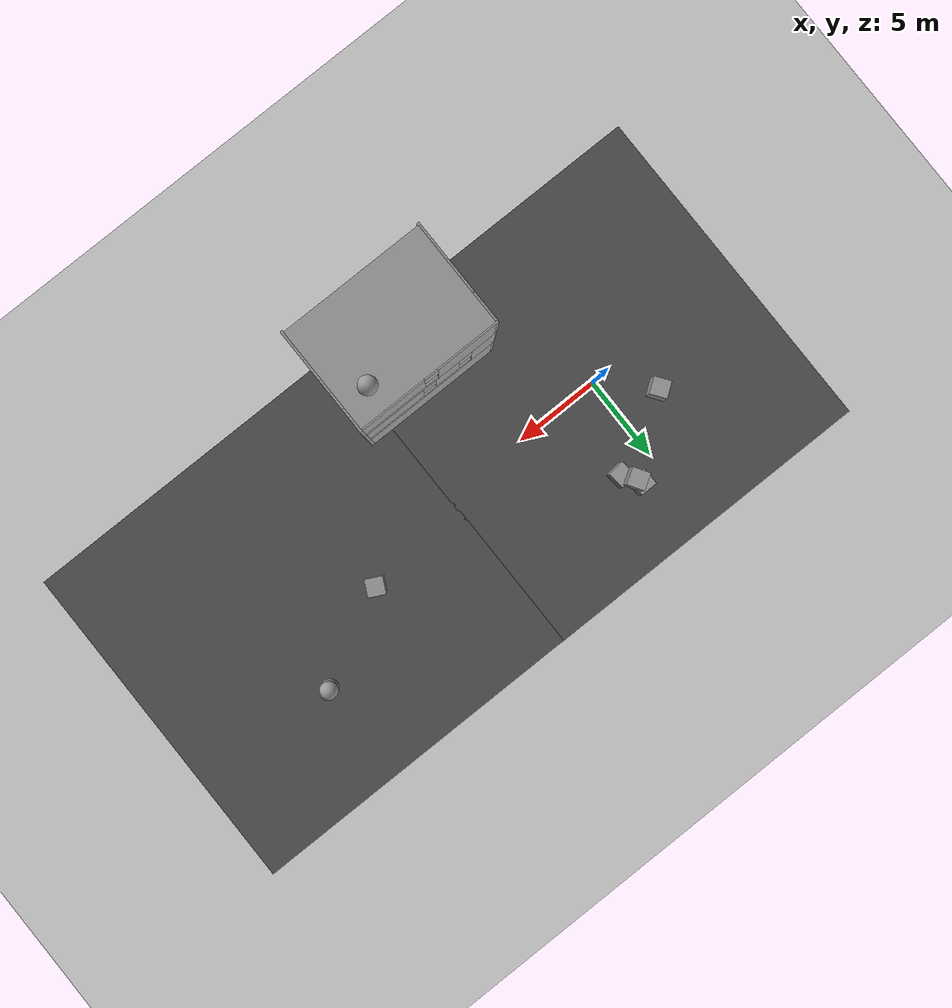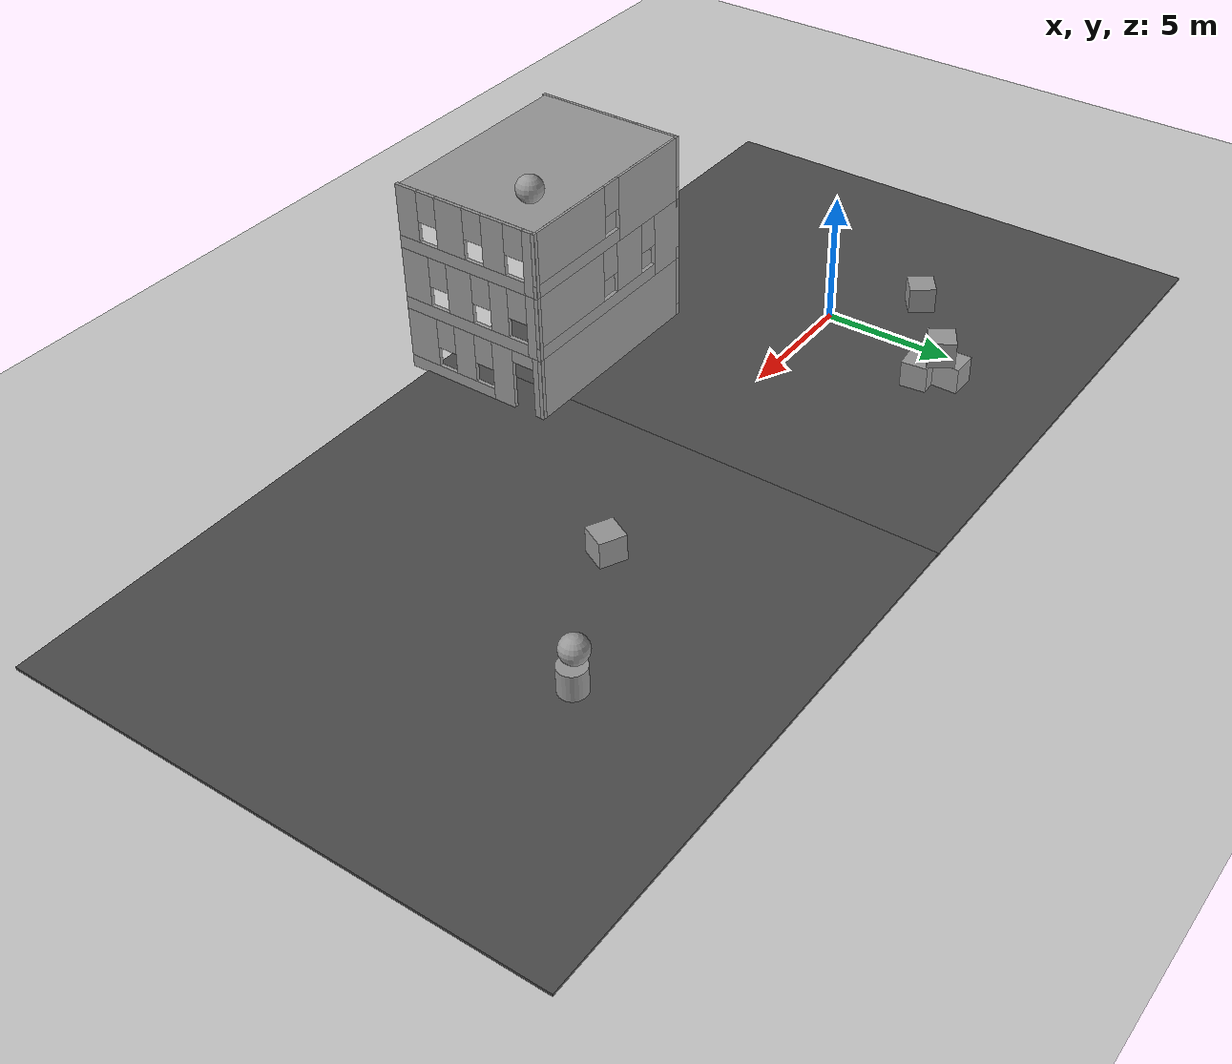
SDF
<sdf version="1.7">
 <world name="default">
  <model name="ground_plane">
   <static>1</static>
   <link name="link">
    <collision name="collision">
     <geometry><plane><normal>0 0 1</normal><size>100 100</size></plane></geometry>
     <surface><friction><ode><mu>100</mu><mu2>50</mu2></ode></friction></surface>
    </collision>
    <visual name="visual">
     <cast_shadows>0</cast_shadows>
     <geometry><plane><normal>0 0 1</normal><size>100 100</size></plane></geometry>
     <material>
      <script><uri>file://media/materials/scripts/gazebo.material</uri><name>Gazebo/Grey</name></script>
     </material>
    </visual>
   </link>
  </model>
  <model name="asphalt_plane">
   <static>1</static>
   <link name="link">
    <collision name="collision"><geometry><box><size>20 20 0.1</size></box></geometry></collision>
    <visual name="visual">
     <cast_shadows>0</cast_shadows>
     <geometry><box><size>20 20 0.1</size></box></geometry>
     <material>
      <script>
       <uri>model://asphalt_plane/materials/scripts</uri>
       <uri>model://asphalt_plane/materials/textures</uri>
       <name>vrc/asphalt</name>
      </script>
     </material>
    </visual>
   </link>
   <pose>0.058806 -0.094526 0 0 -0 0</pose>
  </model>
  <model name="asphalt_plane_0">
   <static>1</static>
   <link name="link">
    <collision name="collision"><geometry><box><size>20 20 0.1</size></box></geometry></collision>
    <visual name="visual">
     <cast_shadows>0</cast_shadows>
     <geometry><box><size>20 20 0.1</size></box></geometry>
     <material>
      <script>
       <uri>model://asphalt_plane/materials/scripts</uri>
       <uri>model://asphalt_plane/materials/textures</uri>
       <name>vrc/asphalt</name>
      </script>
     </material>
    </visual>
   </link>
   <pose>19.9513 -0.10756 0 0 -0 0</pose>
  </model>
  <model name="simple_building">
   <pose>7.31035 -7.81796 0 0 -0 0</pose>
   <link name="Wall_1">
    <pose>-4.06892 0.011464 0 0 -0 1.5708</pose>
    <visual name="Wall_1_Visual_0">
     <pose>-2.34908 0 1.25 0 -0 0</pose>
     <geometry><box><size>1.30184 0.15 2.5</size></box></geometry>
     <material>
      <script><uri>file://media/materials/scripts/gazebo.material</uri><name>Gazebo/Grey</name></script>
      <ambient>1 1 1 1</ambient>
     </material>
    </visual>
    <collision name="Wall_1_Collision_0">
     <geometry><box><size>1.30184 0.15 2.5</size></box></geometry>
     <pose>-2.34908 0 1.25 0 -0 0</pose>
    </collision>
    <visual name="Wall_1_Visual_1">
     <pose>0.650921 0 0.25 0 -0 0</pose>
     <geometry><box><size>4.69816 0.15 0.5</size></box></geometry>
     <material>
      <script><uri>file://media/materials/scripts/gazebo.material</uri><name>Gazebo/Grey</name></script>
      <ambient>1 1 1 1</ambient>
     </material>
    </visual>
    <collision name="Wall_1_Collision_1">
     <geometry><box><size>4.69816 0.15 0.5</size></box></geometry>
     <pose>0.650921 0 0.25 0 -0 0</pose>
    </collision>
    <visual name="Wall_1_Visual_2">
     <pose>-0.309589 0 1.5 0 -0 0</pose>
     <geometry><box><size>1.17714 0.15 2</size></box></geometry>
     <material>
      <script><uri>file://media/materials/scripts/gazebo.material</uri><name>Gazebo/Grey</name></script>
      <ambient>1 1 1 1</ambient>
     </material>
    </visual>
    <collision name="Wall_1_Collision_2">
     <geometry><box><size>1.17714 0.15 2</size></box></geometry>
     <pose>-0.309589 0 1.5 0 -0 0</pose>
    </collision>
    <visual name="Wall_1_Visual_3">
     <pose>2.03949 0 1.5 0 -0 0</pose>
     <geometry><box><size>1.92102 0.15 2</size></box></geometry>
     <material>
      <script><uri>file://media/materials/scripts/gazebo.material</uri><name>Gazebo/Grey</name></script>
      <ambient>1 1 1 1</ambient>
     </material>
    </visual>
    <collision name="Wall_1_Collision_3">
     <geometry><box><size>1.92102 0.15 2</size></box></geometry>
     <pose>2.03949 0 1.5 0 -0 0</pose>
    </collision>
    <visual name="Wall_1_Visual_4">
     <pose>-1.29816 0 1.9 0 -0 0</pose>
     <geometry><box><size>0.8 0.15 1.2</size></box></geometry>
     <material>
      <script><uri>file://media/materials/scripts/gazebo.material</uri><name>Gazebo/Grey</name></script>
      <ambient>1 1 1 1</ambient>
     </material>
    </visual>
    <collision name="Wall_1_Collision_4">
     <geometry><box><size>0.8 0.15 1.2</size></box></geometry>
     <pose>-1.29816 0 1.9 0 -0 0</pose>
    </collision>
    <visual name="Wall_1_Visual_5">
     <pose>0.678979 0 1.9 0 -0 0</pose>
     <geometry><box><size>0.8 0.15 1.2</size></box></geometry>
     <material>
      <script><uri>file://media/materials/scripts/gazebo.material</uri><name>Gazebo/Grey</name></script>
      <ambient>1 1 1 1</ambient>
     </material>
    </visual>
    <collision name="Wall_1_Collision_5">
     <geometry><box><size>0.8 0.15 1.2</size></box></geometry>
     <pose>0.678979 0 1.9 0 -0 0</pose>
    </collision>
   </link>
   <link name="Wall_10">
    <pose>-1.60572 1.23127 0 0 -0 3.14159</pose>
    <visual name="Wall_10_Visual_0">
     <pose>-0.661074 0 1.25 0 -0 0</pose>
     <geometry><box><size>3.67785 0.15 2.5</size></box></geometry>
     <material>
      <script><uri>file://media/materials/scripts/gazebo.material</uri><name>Gazebo/Grey</name></script>
      <ambient>1 1 1 1</ambient>
     </material>
    </visual>
    <collision name="Wall_10_Collision_0">
     <geometry><box><size>3.67785 0.15 2.5</size></box></geometry>
     <pose>-0.661074 0 1.25 0 -0 0</pose>
    </collision>
    <visual name="Wall_10_Visual_1">
     <pose>2.28893 0 1.25 0 -0 0</pose>
     <geometry><box><size>0.422147 0.15 2.5</size></box></geometry>
     <material>
      <script><uri>file://media/materials/scripts/gazebo.material</uri><name>Gazebo/Grey</name></script>
      <ambient>1 1 1 1</ambient>
     </material>
    </visual>
    <collision name="Wall_10_Collision_1">
     <geometry><box><size>0.422147 0.15 2.5</size></box></geometry>
     <pose>2.28893 0 1.25 0 -0 0</pose>
    </collision>
    <visual name="Wall_10_Visual_2">
     <pose>1.62785 0 2.25 0 -0 0</pose>
     <geometry><box><size>0.9 0.15 0.5</size></box></geometry>
     <material>
      <script><uri>file://media/materials/scripts/gazebo.material</uri><name>Gazebo/Grey</name></script>
      <ambient>1 1 1 1</ambient>
     </material>
    </visual>
    <collision name="Wall_10_Collision_2">
     <geometry><box><size>0.9 0.15 0.5</size></box></geometry>
     <pose>1.62785 0 2.25 0 -0 0</pose>
    </collision>
   </link>
   <link name="Wall_17">
    <pose>-4.06892 0.011464 2.5 0 -0 1.5708</pose>
    <visual name="Wall_17_Visual_0">
     <pose>-2.35668 0 1.25 0 -0 0</pose>
     <geometry><box><size>1.28663 0.15 2.5</size></box></geometry>
     <material>
      <script><uri>file://media/materials/scripts/gazebo.material</uri><name>Gazebo/Grey</name></script>
      <ambient>1 1 1 1</ambient>
     </material>
    </visual>
    <collision name="Wall_17_Collision_0">
     <geometry><box><size>1.28663 0.15 2.5</size></box></geometry>
     <pose>-2.35668 0 1.25 0 -0 0</pose>
    </collision>
    <visual name="Wall_17_Visual_1">
     <pose>0.643317 0 0.25 0 -0 0</pose>
     <geometry><box><size>4.71337 0.15 0.5</size></box></geometry>
     <material>
      <script><uri>file://media/materials/scripts/gazebo.material</uri><name>Gazebo/Grey</name></script>
      <ambient>1 1 1 1</ambient>
     </material>
    </visual>
    <collision name="Wall_17_Collision_1">
     <geometry><box><size>4.71337 0.15 0.5</size></box></geometry>
     <pose>0.643317 0 0.25 0 -0 0</pose>
    </collision>
    <visual name="Wall_17_Visual_2">
     <pose>-0.309589 0 1.5 0 -0 0</pose>
     <geometry><box><size>1.20755 0.15 2</size></box></geometry>
     <material>
      <script><uri>file://media/materials/scripts/gazebo.material</uri><name>Gazebo/Grey</name></script>
      <ambient>1 1 1 1</ambient>
     </material>
    </visual>
    <collision name="Wall_17_Collision_2">
     <geometry><box><size>1.20755 0.15 2</size></box></geometry>
     <pose>-0.309589 0 1.5 0 -0 0</pose>
    </collision>
    <visual name="Wall_17_Visual_3">
     <pose>2.04709 0 1.5 0 -0 0</pose>
     <geometry><box><size>1.90581 0.15 2</size></box></geometry>
     <material>
      <script><uri>file://media/materials/scripts/gazebo.material</uri><name>Gazebo/Grey</name></script>
      <ambient>1 1 1 1</ambient>
     </material>
    </visual>
    <collision name="Wall_17_Collision_3">
     <geometry><box><size>1.90581 0.15 2</size></box></geometry>
     <pose>2.04709 0 1.5 0 -0 0</pose>
    </collision>
    <visual name="Wall_17_Visual_4">
     <pose>-1.31337 0 1.9 0 -0 0</pose>
     <geometry><box><size>0.8 0.15 1.2</size></box></geometry>
     <material>
      <script><uri>file://media/materials/scripts/gazebo.material</uri><name>Gazebo/Grey</name></script>
      <ambient>1 1 1 1</ambient>
     </material>
    </visual>
    <collision name="Wall_17_Collision_4">
     <geometry><box><size>0.8 0.15 1.2</size></box></geometry>
     <pose>-1.31337 0 1.9 0 -0 0</pose>
    </collision>
    <visual name="Wall_17_Visual_5">
     <pose>0.694188 0 1.9 0 -0 0</pose>
     <geometry><box><size>0.8 0.15 1.2</size></box></geometry>
     <material>
      <script><uri>file://media/materials/scripts/gazebo.material</uri><name>Gazebo/Grey</name></script>
      <ambient>1 1 1 1</ambient>
     </material>
    </visual>
    <collision name="Wall_17_Collision_5">
     <geometry><box><size>0.8 0.15 1.2</size></box></geometry>
     <pose>0.694188 0 1.9 0 -0 0</pose>
    </collision>
   </link>
   <link name="Wall_18">
    <pose>0.008172 2.93646 2.5 0 -0 0</pose>
    <visual name="Wall_18_Visual_0">
     <pose>-3.37982 0 1.25 0 -0 0</pose>
     <geometry><box><size>1.51412 0.15 2.5</size></box></geometry>
     <material>
      <script><uri>file://media/materials/scripts/gazebo.material</uri><name>Gazebo/Grey</name></script>
      <ambient>1 1 1 1</ambient>
     </material>
    </visual>
    <collision name="Wall_18_Collision_0">
     <geometry><box><size>1.51412 0.15 2.5</size></box></geometry>
     <pose>-3.37982 0 1.25 0 -0 0</pose>
    </collision>
    <visual name="Wall_18_Visual_1">
     <pose>0.757062 0 0.25 0 -0 0</pose>
     <geometry><box><size>6.75963 0.15 0.5</size></box></geometry>
     <material>
      <script><uri>file://media/materials/scripts/gazebo.material</uri><name>Gazebo/Grey</name></script>
      <ambient>1 1 1 1</ambient>
     </material>
    </visual>
    <collision name="Wall_18_Collision_1">
     <geometry><box><size>6.75963 0.15 0.5</size></box></geometry>
     <pose>0.757062 0 0.25 0 -0 0</pose>
    </collision>
    <visual name="Wall_18_Visual_2">
     <pose>-1.0897 0 1.5 0 -0 0</pose>
     <geometry><box><size>1.4661 0.15 2</size></box></geometry>
     <material>
      <script><uri>file://media/materials/scripts/gazebo.material</uri><name>Gazebo/Grey</name></script>
      <ambient>1 1 1 1</ambient>
     </material>
    </visual>
    <collision name="Wall_18_Collision_2">
     <geometry><box><size>1.4661 0.15 2</size></box></geometry>
     <pose>-1.0897 0 1.5 0 -0 0</pose>
    </collision>
    <visual name="Wall_18_Visual_3">
     <pose>2.29011 0 1.5 0 -0 0</pose>
     <geometry><box><size>3.69353 0.15 2</size></box></geometry>
     <material>
      <script><uri>file://media/materials/scripts/gazebo.material</uri><name>Gazebo/Grey</name></script>
      <ambient>1 1 1 1</ambient>
     </material>
    </visual>
    <collision name="Wall_18_Collision_3">
     <geometry><box><size>3.69353 0.15 2</size></box></geometry>
     <pose>2.29011 0 1.5 0 -0 0</pose>
    </collision>
    <visual name="Wall_18_Visual_4">
     <pose>-2.22275 0 1.9 0 -0 0</pose>
     <geometry><box><size>0.8 0.15 1.2</size></box></geometry>
     <material>
      <script><uri>file://media/materials/scripts/gazebo.material</uri><name>Gazebo/Grey</name></script>
      <ambient>1 1 1 1</ambient>
     </material>
    </visual>
    <collision name="Wall_18_Collision_4">
     <geometry><box><size>0.8 0.15 1.2</size></box></geometry>
     <pose>-2.22275 0 1.9 0 -0 0</pose>
    </collision>
    <visual name="Wall_18_Visual_5">
     <pose>0.043349 0 1.9 0 -0 0</pose>
     <geometry><box><size>0.8 0.15 1.2</size></box></geometry>
     <material>
      <script><uri>file://media/materials/scripts/gazebo.material</uri><name>Gazebo/Grey</name></script>
      <ambient>1 1 1 1</ambient>
     </material>
    </visual>
    <collision name="Wall_18_Collision_5">
     <geometry><box><size>0.8 0.15 1.2</size></box></geometry>
     <pose>0.043349 0 1.9 0 -0 0</pose>
    </collision>
   </link>
   <link name="Wall_19">
    <pose>4.05484 0.011464 2.5 0 0 -1.5708</pose>
    <visual name="Wall_19_Visual_0">
     <pose>-2.73149 0 1.25 0 -0 0</pose>
     <geometry><box><size>0.537024 0.15 2.5</size></box></geometry>
     <material>
      <script><uri>file://media/materials/scripts/gazebo.material</uri><name>Gazebo/Grey</name></script>
      <ambient>1 1 1 1</ambient>
     </material>
    </visual>
    <collision name="Wall_19_Collision_0">
     <geometry><box><size>0.537024 0.15 2.5</size></box></geometry>
     <pose>-2.73149 0 1.25 0 -0 0</pose>
    </collision>
    <visual name="Wall_19_Visual_1">
     <pose>0.268512 0 0.25 0 -0 0</pose>
     <geometry><box><size>5.46298 0.15 0.5</size></box></geometry>
     <material>
      <script><uri>file://media/materials/scripts/gazebo.material</uri><name>Gazebo/Grey</name></script>
      <ambient>1 1 1 1</ambient>
     </material>
    </visual>
    <collision name="Wall_19_Collision_1">
     <geometry><box><size>5.46298 0.15 0.5</size></box></geometry>
     <pose>0.268512 0 0.25 0 -0 0</pose>
    </collision>
    <visual name="Wall_19_Visual_2">
     <pose>-1.27212 0 1.5 0 -0 0</pose>
     <geometry><box><size>0.78171 0.15 2</size></box></geometry>
     <material>
      <script><uri>file://media/materials/scripts/gazebo.material</uri><name>Gazebo/Grey</name></script>
      <ambient>1 1 1 1</ambient>
     </material>
    </visual>
    <collision name="Wall_19_Collision_2">
     <geometry><box><size>0.78171 0.15 2</size></box></geometry>
     <pose>-1.27212 0 1.5 0 -0 0</pose>
    </collision>
    <visual name="Wall_19_Visual_3">
     <pose>0.469281 0 1.5 0 -0 0</pose>
     <geometry><box><size>1.10109 0.15 2</size></box></geometry>
     <material>
      <script><uri>file://media/materials/scripts/gazebo.material</uri><name>Gazebo/Grey</name></script>
      <ambient>1 1 1 1</ambient>
     </material>
    </visual>
    <collision name="Wall_19_Collision_3">
     <geometry><box><size>1.10109 0.15 2</size></box></geometry>
     <pose>0.469281 0 1.5 0 -0 0</pose>
    </collision>
    <visual name="Wall_19_Visual_4">
     <pose>2.40991 0 1.5 0 -0 0</pose>
     <geometry><box><size>1.18017 0.15 2</size></box></geometry>
     <material>
      <script><uri>file://media/materials/scripts/gazebo.material</uri><name>Gazebo/Grey</name></script>
      <ambient>1 1 1 1</ambient>
     </material>
    </visual>
    <collision name="Wall_19_Collision_4">
     <geometry><box><size>1.18017 0.15 2</size></box></geometry>
     <pose>2.40991 0 1.5 0 -0 0</pose>
    </collision>
    <visual name="Wall_19_Visual_5">
     <pose>-2.06298 0 1.9 0 -0 0</pose>
     <geometry><box><size>0.8 0.15 1.2</size></box></geometry>
     <material>
      <script><uri>file://media/materials/scripts/gazebo.material</uri><name>Gazebo/Grey</name></script>
      <ambient>1 1 1 1</ambient>
     </material>
    </visual>
    <collision name="Wall_19_Collision_5">
     <geometry><box><size>0.8 0.15 1.2</size></box></geometry>
     <pose>-2.06298 0 1.9 0 -0 0</pose>
    </collision>
    <visual name="Wall_19_Visual_6">
     <pose>-0.481266 0 1.9 0 -0 0</pose>
     <geometry><box><size>0.8 0.15 1.2</size></box></geometry>
     <material>
      <script><uri>file://media/materials/scripts/gazebo.material</uri><name>Gazebo/Grey</name></script>
      <ambient>1 1 1 1</ambient>
     </material>
    </visual>
    <collision name="Wall_19_Collision_6">
     <geometry><box><size>0.8 0.15 1.2</size></box></geometry>
     <pose>-0.481266 0 1.9 0 -0 0</pose>
    </collision>
    <visual name="Wall_19_Visual_7">
     <pose>1.41983 0 1.9 0 -0 0</pose>
     <geometry><box><size>0.8 0.15 1.2</size></box></geometry>
     <material>
      <script><uri>file://media/materials/scripts/gazebo.material</uri><name>Gazebo/Grey</name></script>
      <ambient>1 1 1 1</ambient>
     </material>
    </visual>
    <collision name="Wall_19_Collision_7">
     <geometry><box><size>0.8 0.15 1.2</size></box></geometry>
     <pose>1.41983 0 1.9 0 -0 0</pose>
    </collision>
   </link>
   <link name="Wall_2">
    <collision name="Wall_2_Collision">
     <geometry><box><size>8.27376 0.15 2.5</size></box></geometry>
     <pose>0 0 1.25 0 -0 0</pose>
    </collision>
    <visual name="Wall_2_Visual">
     <pose>0 0 1.25 0 -0 0</pose>
     <geometry><box><size>8.27376 0.15 2.5</size></box></geometry>
     <material>
      <script><uri>file://media/materials/scripts/gazebo.material</uri><name>Gazebo/Grey</name></script>
      <ambient>1 1 1 1</ambient>
     </material>
    </visual>
    <pose>0.008172 2.93646 0 0 -0 0</pose>
   </link>
   <link name="Wall_21">
    <collision name="Wall_21_Collision">
     <geometry><box><size>3.5 0.15 2.5</size></box></geometry>
     <pose>0 0 1.25 0 -0 0</pose>
    </collision>
    <visual name="Wall_21_Visual">
     <pose>0 0 1.25 0 -0 0</pose>
     <geometry><box><size>3.5 0.15 2.5</size></box></geometry>
     <material>
      <script><uri>file://media/materials/scripts/gazebo.material</uri><name>Gazebo/Grey</name></script>
      <ambient>1 1 1 1</ambient>
     </material>
    </visual>
    <pose>-0.855716 1.23127 2.5 0 -0 3.14159</pose>
   </link>
   <link name="Wall_22">
    <pose>-4.06892 0.011464 5 0 -0 1.5708</pose>
    <visual name="Wall_22_Visual_0">
     <pose>-2.31106 0 1.25 0 -0 0</pose>
     <geometry><box><size>1.37789 0.15 2.5</size></box></geometry>
     <material>
      <script><uri>file://media/materials/scripts/gazebo.material</uri><name>Gazebo/Grey</name></script>
      <ambient>1 1 1 1</ambient>
     </material>
    </visual>
    <collision name="Wall_22_Collision_0">
     <geometry><box><size>1.37789 0.15 2.5</size></box></geometry>
     <pose>-2.31106 0 1.25 0 -0 0</pose>
    </collision>
    <visual name="Wall_22_Visual_1">
     <pose>0.688943 0 0.25 0 -0 0</pose>
     <geometry><box><size>4.62211 0.15 0.5</size></box></geometry>
     <material>
      <script><uri>file://media/materials/scripts/gazebo.material</uri><name>Gazebo/Grey</name></script>
      <ambient>1 1 1 1</ambient>
     </material>
    </visual>
    <collision name="Wall_22_Collision_1">
     <geometry><box><size>4.62211 0.15 0.5</size></box></geometry>
     <pose>0.688943 0 0.25 0 -0 0</pose>
    </collision>
    <visual name="Wall_22_Visual_2">
     <pose>-0.271567 0 1.5 0 -0 0</pose>
     <geometry><box><size>1.10109 0.15 2</size></box></geometry>
     <material>
      <script><uri>file://media/materials/scripts/gazebo.material</uri><name>Gazebo/Grey</name></script>
      <ambient>1 1 1 1</ambient>
     </material>
    </visual>
    <collision name="Wall_22_Collision_2">
     <geometry><box><size>1.10109 0.15 2</size></box></geometry>
     <pose>-0.271567 0 1.5 0 -0 0</pose>
    </collision>
    <visual name="Wall_22_Visual_3">
     <pose>2.03949 0 1.5 0 -0 0</pose>
     <geometry><box><size>1.92102 0.15 2</size></box></geometry>
     <material>
      <script><uri>file://media/materials/scripts/gazebo.material</uri><name>Gazebo/Grey</name></script>
      <ambient>1 1 1 1</ambient>
     </material>
    </visual>
    <collision name="Wall_22_Collision_3">
     <geometry><box><size>1.92102 0.15 2</size></box></geometry>
     <pose>2.03949 0 1.5 0 -0 0</pose>
    </collision>
    <visual name="Wall_22_Visual_4">
     <pose>-1.22211 0 1.9 0 -0 0</pose>
     <geometry><box><size>0.8 0.15 1.2</size></box></geometry>
     <material>
      <script><uri>file://media/materials/scripts/gazebo.material</uri><name>Gazebo/Grey</name></script>
      <ambient>1 1 1 1</ambient>
     </material>
    </visual>
    <collision name="Wall_22_Collision_4">
     <geometry><box><size>0.8 0.15 1.2</size></box></geometry>
     <pose>-1.22211 0 1.9 0 -0 0</pose>
    </collision>
    <visual name="Wall_22_Visual_5">
     <pose>0.678979 0 1.9 0 -0 0</pose>
     <geometry><box><size>0.8 0.15 1.2</size></box></geometry>
     <material>
      <script><uri>file://media/materials/scripts/gazebo.material</uri><name>Gazebo/Grey</name></script>
      <ambient>1 1 1 1</ambient>
     </material>
    </visual>
    <collision name="Wall_22_Collision_5">
     <geometry><box><size>0.8 0.15 1.2</size></box></geometry>
     <pose>0.678979 0 1.9 0 -0 0</pose>
    </collision>
   </link>
   <link name="Wall_23">
    <pose>0.008172 2.93646 5 0 -0 0</pose>
    <visual name="Wall_23_Visual_0">
     <pose>-2.33041 0 1.25 0 -0 0</pose>
     <geometry><box><size>3.61293 0.15 2.5</size></box></geometry>
     <material>
      <script><uri>file://media/materials/scripts/gazebo.material</uri><name>Gazebo/Grey</name></script>
      <ambient>1 1 1 1</ambient>
     </material>
    </visual>
    <collision name="Wall_23_Collision_0">
     <geometry><box><size>3.61293 0.15 2.5</size></box></geometry>
     <pose>-2.33041 0 1.25 0 -0 0</pose>
    </collision>
    <visual name="Wall_23_Visual_1">
     <pose>1.80647 0 0.25 0 -0 0</pose>
     <geometry><box><size>4.66083 0.15 0.5</size></box></geometry>
     <material>
      <script><uri>file://media/materials/scripts/gazebo.material</uri><name>Gazebo/Grey</name></script>
      <ambient>1 1 1 1</ambient>
     </material>
    </visual>
    <collision name="Wall_23_Collision_1">
     <geometry><box><size>4.66083 0.15 0.5</size></box></geometry>
     <pose>1.80647 0 0.25 0 -0 0</pose>
    </collision>
    <visual name="Wall_23_Visual_2">
     <pose>2.20647 0 1.5 0 -0 0</pose>
     <geometry><box><size>3.86083 0.15 2</size></box></geometry>
     <material>
      <script><uri>file://media/materials/scripts/gazebo.material</uri><name>Gazebo/Grey</name></script>
      <ambient>1 1 1 1</ambient>
     </material>
    </visual>
    <collision name="Wall_23_Collision_2">
     <geometry><box><size>3.86083 0.15 2</size></box></geometry>
     <pose>2.20647 0 1.5 0 -0 0</pose>
    </collision>
    <visual name="Wall_23_Visual_3">
     <pose>-0.123947 0 1.9 0 -0 0</pose>
     <geometry><box><size>0.8 0.15 1.2</size></box></geometry>
     <material>
      <script><uri>file://media/materials/scripts/gazebo.material</uri><name>Gazebo/Grey</name></script>
      <ambient>1 1 1 1</ambient>
     </material>
    </visual>
    <collision name="Wall_23_Collision_3">
     <geometry><box><size>0.8 0.15 1.2</size></box></geometry>
     <pose>-0.123947 0 1.9 0 -0 0</pose>
    </collision>
   </link>
   <link name="Wall_24">
    <pose>4.05484 0.011464 5 0 0 -1.5708</pose>
    <visual name="Wall_24_Visual_0">
     <pose>-2.73149 0 1.25 0 -0 0</pose>
     <geometry><box><size>0.537024 0.15 2.5</size></box></geometry>
     <material>
      <script><uri>file://media/materials/scripts/gazebo.material</uri><name>Gazebo/Grey</name></script>
      <ambient>1 1 1 1</ambient>
     </material>
    </visual>
    <collision name="Wall_24_Collision_0">
     <geometry><box><size>0.537024 0.15 2.5</size></box></geometry>
     <pose>-2.73149 0 1.25 0 -0 0</pose>
    </collision>
    <visual name="Wall_24_Visual_1">
     <pose>0.268512 0 0.25 0 -0 0</pose>
     <geometry><box><size>5.46298 0.15 0.5</size></box></geometry>
     <material>
      <script><uri>file://media/materials/scripts/gazebo.material</uri><name>Gazebo/Grey</name></script>
      <ambient>1 1 1 1</ambient>
     </material>
    </visual>
    <collision name="Wall_24_Collision_1">
     <geometry><box><size>5.46298 0.15 0.5</size></box></geometry>
     <pose>0.268512 0 0.25 0 -0 0</pose>
    </collision>
    <visual name="Wall_24_Visual_2">
     <pose>-1.18847 0 1.5 0 -0 0</pose>
     <geometry><box><size>0.949006 0.15 2</size></box></geometry>
     <material>
      <script><uri>file://media/materials/scripts/gazebo.material</uri><name>Gazebo/Grey</name></script>
      <ambient>1 1 1 1</ambient>
     </material>
    </visual>
    <collision name="Wall_24_Collision_2">
     <geometry><box><size>0.949006 0.15 2</size></box></geometry>
     <pose>-1.18847 0 1.5 0 -0 0</pose>
    </collision>
    <visual name="Wall_24_Visual_3">
     <pose>0.689808 0 1.5 0 -0 0</pose>
     <geometry><box><size>1.20755 0.15 2</size></box></geometry>
     <material>
      <script><uri>file://media/materials/scripts/gazebo.material</uri><name>Gazebo/Grey</name></script>
      <ambient>1 1 1 1</ambient>
     </material>
    </visual>
    <collision name="Wall_24_Collision_3">
     <geometry><box><size>1.20755 0.15 2</size></box></geometry>
     <pose>0.689808 0 1.5 0 -0 0</pose>
    </collision>
    <visual name="Wall_24_Visual_4">
     <pose>2.54679 0 1.5 0 -0 0</pose>
     <geometry><box><size>0.906414 0.15 2</size></box></geometry>
     <material>
      <script><uri>file://media/materials/scripts/gazebo.material</uri><name>Gazebo/Grey</name></script>
      <ambient>1 1 1 1</ambient>
     </material>
    </visual>
    <collision name="Wall_24_Collision_4">
     <geometry><box><size>0.906414 0.15 2</size></box></geometry>
     <pose>2.54679 0 1.5 0 -0 0</pose>
    </collision>
    <visual name="Wall_24_Visual_5">
     <pose>-2.06298 0 1.9 0 -0 0</pose>
     <geometry><box><size>0.8 0.15 1.2</size></box></geometry>
     <material>
      <script><uri>file://media/materials/scripts/gazebo.material</uri><name>Gazebo/Grey</name></script>
      <ambient>1 1 1 1</ambient>
     </material>
    </visual>
    <collision name="Wall_24_Collision_5">
     <geometry><box><size>0.8 0.15 1.2</size></box></geometry>
     <pose>-2.06298 0 1.9 0 -0 0</pose>
    </collision>
    <visual name="Wall_24_Visual_6">
     <pose>-0.313969 0 1.9 0 -0 0</pose>
     <geometry><box><size>0.8 0.15 1.2</size></box></geometry>
     <material>
      <script><uri>file://media/materials/scripts/gazebo.material</uri><name>Gazebo/Grey</name></script>
      <ambient>1 1 1 1</ambient>
     </material>
    </visual>
    <collision name="Wall_24_Collision_6">
     <geometry><box><size>0.8 0.15 1.2</size></box></geometry>
     <pose>-0.313969 0 1.9 0 -0 0</pose>
    </collision>
    <visual name="Wall_24_Visual_7">
     <pose>1.69359 0 1.9 0 -0 0</pose>
     <geometry><box><size>0.8 0.15 1.2</size></box></geometry>
     <material>
      <script><uri>file://media/materials/scripts/gazebo.material</uri><name>Gazebo/Grey</name></script>
      <ambient>1 1 1 1</ambient>
     </material>
    </visual>
    <collision name="Wall_24_Collision_7">
     <geometry><box><size>0.8 0.15 1.2</size></box></geometry>
     <pose>1.69359 0 1.9 0 -0 0</pose>
    </collision>
   </link>
   <link name="Wall_26">
    <collision name="Wall_26_Collision">
     <geometry><box><size>5 0.15 2.5</size></box></geometry>
     <pose>0 0 1.25 0 -0 0</pose>
    </collision>
    <visual name="Wall_26_Visual">
     <pose>0 0 1.25 0 -0 0</pose>
     <geometry><box><size>5 0.15 2.5</size></box></geometry>
     <material>
      <script><uri>file://media/materials/scripts/gazebo.material</uri><name>Gazebo/Grey</name></script>
      <ambient>1 1 1 1</ambient>
     </material>
    </visual>
    <pose>-1.60572 1.23127 5 0 -0 3.14159</pose>
   </link>
   <link name="Wall_27">
    <pose>0.819284 2.03127 5 0 -0 1.5708</pose>
    <visual name="Wall_27_Visual_0">
     <pose>-0.630644 0 1.25 0 -0 0</pose>
     <geometry><box><size>0.488713 0.15 2.5</size></box></geometry>
     <material>
      <script><uri>file://media/materials/scripts/gazebo.material</uri><name>Gazebo/Grey</name></script>
      <ambient>1 1 1 1</ambient>
     </material>
    </visual>
    <collision name="Wall_27_Collision_0">
     <geometry><box><size>0.488713 0.15 2.5</size></box></geometry>
     <pose>-0.630644 0 1.25 0 -0 0</pose>
    </collision>
    <visual name="Wall_27_Visual_1">
     <pose>0.694356 0 1.25 0 -0 0</pose>
     <geometry><box><size>0.361287 0.15 2.5</size></box></geometry>
     <material>
      <script><uri>file://media/materials/scripts/gazebo.material</uri><name>Gazebo/Grey</name></script>
      <ambient>1 1 1 1</ambient>
     </material>
    </visual>
    <collision name="Wall_27_Collision_1">
     <geometry><box><size>0.361287 0.15 2.5</size></box></geometry>
     <pose>0.694356 0 1.25 0 -0 0</pose>
    </collision>
    <visual name="Wall_27_Visual_2">
     <pose>0.063713 0 2.25 0 -0 0</pose>
     <geometry><box><size>0.9 0.15 0.5</size></box></geometry>
     <material>
      <script><uri>file://media/materials/scripts/gazebo.material</uri><name>Gazebo/Grey</name></script>
      <ambient>1 1 1 1</ambient>
     </material>
    </visual>
    <collision name="Wall_27_Collision_2">
     <geometry><box><size>0.9 0.15 0.5</size></box></geometry>
     <pose>0.063713 0 2.25 0 -0 0</pose>
    </collision>
   </link>
   <link name="Wall_3">
    <pose>4.05484 0.011464 0 0 0 -1.5708</pose>
    <visual name="Wall_3_Visual_0">
     <pose>-2.80638 0 1.25 0 -0 0</pose>
     <geometry><box><size>0.387247 0.15 2.5</size></box></geometry>
     <material>
      <script><uri>file://media/materials/scripts/gazebo.material</uri><name>Gazebo/Grey</name></script>
      <ambient>1 1 1 1</ambient>
     </material>
    </visual>
    <collision name="Wall_3_Collision_0">
     <geometry><box><size>0.387247 0.15 2.5</size></box></geometry>
     <pose>-2.80638 0 1.25 0 -0 0</pose>
    </collision>
    <visual name="Wall_3_Visual_1">
     <pose>-1.25899 0 1.25 0 -0 0</pose>
     <geometry><box><size>0.907531 0.15 2.5</size></box></geometry>
     <material>
      <script><uri>file://media/materials/scripts/gazebo.material</uri><name>Gazebo/Grey</name></script>
      <ambient>1 1 1 1</ambient>
     </material>
    </visual>
    <collision name="Wall_3_Collision_1">
     <geometry><box><size>0.907531 0.15 2.5</size></box></geometry>
     <pose>-1.25899 0 1.25 0 -0 0</pose>
    </collision>
    <visual name="Wall_3_Visual_2">
     <pose>1.09739 0 0.25 0 -0 0</pose>
     <geometry><box><size>3.80522 0.15 0.5</size></box></geometry>
     <material>
      <script><uri>file://media/materials/scripts/gazebo.material</uri><name>Gazebo/Grey</name></script>
      <ambient>1 1 1 1</ambient>
     </material>
    </visual>
    <collision name="Wall_3_Collision_2">
     <geometry><box><size>3.80522 0.15 0.5</size></box></geometry>
     <pose>1.09739 0 0.25 0 -0 0</pose>
    </collision>
    <visual name="Wall_3_Visual_3">
     <pose>0.446468 0 1.5 0 -0 0</pose>
     <geometry><box><size>0.90338 0.15 2</size></box></geometry>
     <material>
      <script><uri>file://media/materials/scripts/gazebo.material</uri><name>Gazebo/Grey</name></script>
      <ambient>1 1 1 1</ambient>
     </material>
    </visual>
    <collision name="Wall_3_Collision_3">
     <geometry><box><size>0.90338 0.15 2</size></box></geometry>
     <pose>0.446468 0 1.5 0 -0 0</pose>
    </collision>
    <visual name="Wall_3_Visual_4">
     <pose>2.34908 0 1.5 0 -0 0</pose>
     <geometry><box><size>1.30184 0.15 2</size></box></geometry>
     <material>
      <script><uri>file://media/materials/scripts/gazebo.material</uri><name>Gazebo/Grey</name></script>
      <ambient>1 1 1 1</ambient>
     </material>
    </visual>
    <collision name="Wall_3_Collision_4">
     <geometry><box><size>1.30184 0.15 2</size></box></geometry>
     <pose>2.34908 0 1.5 0 -0 0</pose>
    </collision>
    <visual name="Wall_3_Visual_5">
     <pose>-0.405222 0 1.9 0 -0 0</pose>
     <geometry><box><size>0.8 0.15 1.2</size></box></geometry>
     <material>
      <script><uri>file://media/materials/scripts/gazebo.material</uri><name>Gazebo/Grey</name></script>
      <ambient>1 1 1 1</ambient>
     </material>
    </visual>
    <collision name="Wall_3_Collision_5">
     <geometry><box><size>0.8 0.15 1.2</size></box></geometry>
     <pose>-0.405222 0 1.9 0 -0 0</pose>
    </collision>
    <visual name="Wall_3_Visual_6">
     <pose>1.29816 0 1.9 0 -0 0</pose>
     <geometry><box><size>0.8 0.15 1.2</size></box></geometry>
     <material>
      <script><uri>file://media/materials/scripts/gazebo.material</uri><name>Gazebo/Grey</name></script>
      <ambient>1 1 1 1</ambient>
     </material>
    </visual>
    <collision name="Wall_3_Collision_6">
     <geometry><box><size>0.8 0.15 1.2</size></box></geometry>
     <pose>1.29816 0 1.9 0 -0 0</pose>
    </collision>
    <visual name="Wall_3_Visual_7">
     <pose>-2.16275 0 2.25 0 -0 0</pose>
     <geometry><box><size>0.9 0.15 0.5</size></box></geometry>
     <material>
      <script><uri>file://media/materials/scripts/gazebo.material</uri><name>Gazebo/Grey</name></script>
      <ambient>1 1 1 1</ambient>
     </material>
    </visual>
    <collision name="Wall_3_Collision_7">
     <geometry><box><size>0.9 0.15 0.5</size></box></geometry>
     <pose>-2.16275 0 2.25 0 -0 0</pose>
    </collision>
   </link>
   <link name="Wall_33">
    <collision name="Wall_33_Collision">
     <geometry><box><size>5 0.15 2.5</size></box></geometry>
     <pose>0 0 1.25 0 -0 0</pose>
    </collision>
    <visual name="Wall_33_Visual">
     <pose>0 0 1.25 0 -0 0</pose>
     <geometry><box><size>5 0.15 2.5</size></box></geometry>
     <material>
      <script><uri>file://media/materials/scripts/gazebo.material</uri><name>Gazebo/Grey</name></script>
      <ambient>1 1 1 1</ambient>
     </material>
    </visual>
    <pose>-1.51879 0.163536 5 0 -0 3.14159</pose>
   </link>
   <link name="Wall_35">
    <collision name="Wall_35_Collision">
     <geometry><box><size>5 0.15 2.5</size></box></geometry>
     <pose>0 0 1.25 0 -0 0</pose>
    </collision>
    <visual name="Wall_35_Visual">
     <pose>0 0 1.25 0 -0 0</pose>
     <geometry><box><size>5 0.15 2.5</size></box></geometry>
     <material>
      <script><uri>file://media/materials/scripts/gazebo.material</uri><name>Gazebo/Grey</name></script>
      <ambient>1 1 1 1</ambient>
     </material>
    </visual>
    <pose>-1.64505 0.188555 2.5 0 -0 0</pose>
   </link>
   <static>1</static>
  </model>
  <model name="simple_plane">
   <static>1</static>
   <link name="link">
    <collision name="collision"><geometry><box><size>8.02916 5.80556 0.1</size></box></geometry></collision>
    <visual name="visual">
     <cast_shadows>0</cast_shadows>
     <geometry><box><size>8.02916 5.80556 0.1</size></box></geometry>
     <material>
      <script><uri>file://media/materials/scripts/gazebo.material</uri><name>Gazebo/Grey</name></script>
     </material>
    </visual>
   </link>
   <pose>7.30034 -7.79717 7.45488 0 -0 0</pose>
  </model>
  <model name="unit_box_0">
   <pose>-2.49229 2.46601 0.55 -5e-06 -5e-06 0.619038</pose>
   <link name="link">
    <inertial>
     <mass>1</mass>
     <inertia>
      <ixx>0.166667</ixx>
      <ixy>0</ixy>
      <ixz>0</ixz>
      <iyy>0.166667</iyy>
      <iyz>0</iyz>
      <izz>0.166667</izz>
     </inertia>
    </inertial>
    <collision name="collision"><geometry><box><size>1 1 1</size></box></geometry></collision>
    <visual name="visual">
     <geometry><box><size>1 1 1</size></box></geometry>
     <material>
      <script><name>Gazebo/Grey</name><uri>file://media/materials/scripts/gazebo.material</uri></script>
     </material>
    </visual>
   </link>
  </model>
  <model name="unit_box_2">
   <pose>2.01439 4.81677 0.549989 -1.3e-05 -1.2e-05 0.110954</pose>
   <link name="link">
    <inertial>
     <mass>1</mass>
     <inertia>
      <ixx>0.166667</ixx>
      <ixy>0</ixy>
      <ixz>0</ixz>
      <iyy>0.166667</iyy>
      <iyz>0</iyz>
      <izz>0.166667</izz>
     </inertia>
    </inertial>
    <collision name="collision"><geometry><box><size>1 1 1</size></box></geometry></collision>
    <visual name="visual">
     <geometry><box><size>1 1 1</size></box></geometry>
     <material>
      <script><name>Gazebo/Grey</name><uri>file://media/materials/scripts/gazebo.material</uri></script>
     </material>
    </visual>
   </link>
  </model>
  <model name="unit_box_4">
   <pose>16.0094 1.26289 0.55 -5e-06 5e-06 -0.465064</pose>
   <link name="link">
    <inertial>
     <mass>1</mass>
     <inertia>
      <ixx>0.166667</ixx>
      <ixy>0</ixy>
      <ixz>0</ixz>
      <iyy>0.166667</iyy>
      <iyz>0</iyz>
      <izz>0.166667</izz>
     </inertia>
    </inertial>
    <collision name="collision"><geometry><box><size>1 1 1</size></box></geometry></collision>
    <visual name="visual">
     <geometry><box><size>1 1 1</size></box></geometry>
     <material>
      <script><name>Gazebo/Grey</name><uri>file://media/materials/scripts/gazebo.material</uri></script>
     </material>
    </visual>
   </link>
  </model>
  <model name="unit_sphere_0">
   <pose>21.2119 3.98346 1.55004 0.000619 -0.004842 -2e-06</pose>
   <link name="link">
    <inertial>
     <mass>1</mass>
     <inertia><ixx>0.1</ixx><ixy>0</ixy><ixz>0</ixz><iyy>0.1</iyy><iyz>0</iyz><izz>0.1</izz></inertia>
    </inertial>
    <collision name="collision"><geometry><sphere><radius>0.5</radius></sphere></geometry></collision>
    <visual name="visual">
     <geometry><sphere><radius>0.5</radius></sphere></geometry>
     <material>
      <script><name>Gazebo/Grey</name><uri>file://media/materials/scripts/gazebo.material</uri></script>
     </material>
    </visual>
   </link>
  </model>
  <model name="unit_box_5">
   <pose>1.66578 5.43933 1.54998 -1.3e-05 3e-06 0.5441</pose>
   <link name="link">
    <inertial>
     <mass>1</mass>
     <inertia>
      <ixx>0.166667</ixx>
      <ixy>0</ixy>
      <ixz>0</ixz>
      <iyy>0.166667</iyy>
      <iyz>0</iyz>
      <izz>0.166667</izz>
     </inertia>
    </inertial>
    <collision name="collision"><geometry><box><size>1 1 1</size></box></geometry></collision>
    <visual name="visual">
     <geometry><box><size>1 1 1</size></box></geometry>
     <material>
      <script><name>Gazebo/Grey</name><uri>file://media/materials/scripts/gazebo.material</uri></script>
     </material>
    </visual>
   </link>
  </model>
  <model name="unit_box_6">
   <pose>1.39546 5.80675 0.549983 -6e-06 -7e-06 0.000385</pose>
   <link name="link">
    <inertial>
     <mass>1</mass>
     <inertia>
      <ixx>0.166667</ixx>
      <ixy>0</ixy>
      <ixz>0</ixz>
      <iyy>0.166667</iyy>
      <iyz>0</iyz>
      <izz>0.166667</izz>
     </inertia>
    </inertial>
    <collision name="collision"><geometry><box><size>1 1 1</size></box></geometry></collision>
    <visual name="visual">
     <geometry><box><size>1 1 1</size></box></geometry>
     <material>
      <script><name>Gazebo/Grey</name><uri>file://media/materials/scripts/gazebo.material</uri></script>
     </material>
    </visual>
   </link>
  </model>
  <model name="unit_cylinder_2">
   <pose>21.3751 4.00291 0.55006 1.3e-05 -0.000111 -5.7e-05</pose>
   <link name="link">
    <inertial>
     <mass>1</mass>
     <inertia><ixx>0.145833</ixx><ixy>0</ixy><ixz>0</ixz><iyy>0.145833</iyy><iyz>0</iyz><izz>0.125</izz></inertia>
    </inertial>
    <collision name="collision">
     <geometry><cylinder><radius>0.5</radius><length>1</length></cylinder></geometry>
    </collision>
    <visual name="visual">
     <geometry><cylinder><radius>0.5</radius><length>1</length></cylinder></geometry>
     <material>
      <script><name>Gazebo/Grey</name><uri>file://media/materials/scripts/gazebo.material</uri></script>
     </material>
    </visual>
   </link>
  </model>
  <model name="unit_sphere_1">
   <pose>9.81257 -6.22895 8.00488 0 -0 0</pose>
   <link name="link">
    <inertial>
     <mass>1</mass>
     <inertia><ixx>0.1</ixx><ixy>0</ixy><ixz>0</ixz><iyy>0.1</iyy><iyz>0</iyz><izz>0.1</izz></inertia>
    </inertial>
    <collision name="collision"><geometry><sphere><radius>0.5</radius></sphere></geometry></collision>
    <visual name="visual">
     <geometry><sphere><radius>0.5</radius></sphere></geometry>
     <material>
      <script><name>Gazebo/Grey</name><uri>file://media/materials/scripts/gazebo.material</uri></script>
     </material>
    </visual>
   </link>
  </model>
 </world>
</sdf>
